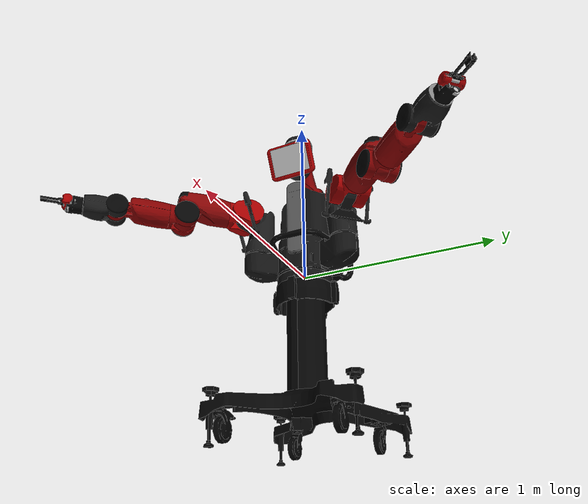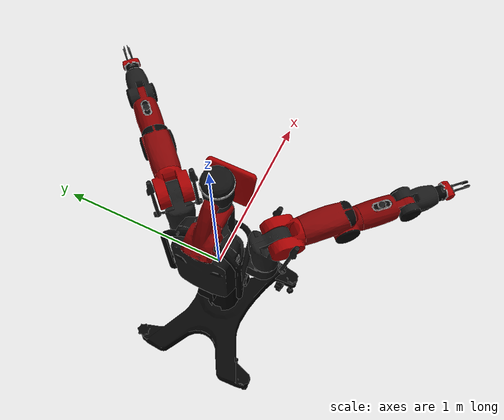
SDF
<sdf version='1.6'>
  <model name='baxter'>
    <link name='base'>
      <pose frame=''>0 0 0 0 -0 0</pose>
      <inertial>
        <pose frame=''>0 -0 3e-06 0 -0 0</pose>
        <mass>96.2011</mass>
        <inertia>
          <ixx>6.91297</ixx>
          <ixy>0.00068017</ixy>
          <ixz>0.64779</ixz>
          <iyy>7.74978</iyy>
          <iyz>0.00434511</iyz>
          <izz>5.76418</izz>
        </inertia>
      </inertial>
      <collision name='base_fixed_joint_lump__collision_head_link_1_collision'>
        <pose frame=''>0.04 -0.04 0.75 0 -0 0</pose>
        <geometry>
          <sphere>
            <radius>0.22</radius>
          </sphere>
        </geometry>
      </collision>
      <collision name='base_fixed_joint_lump__collision_head_link_2_collision_1'>
        <pose frame=''>0.04 0.04 0.75 0 -0 0</pose>
        <geometry>
          <sphere>
            <radius>0.22</radius>
          </sphere>
        </geometry>
      </collision>
      <collision name='base_fixed_joint_lump__torso_collision_2'>
        <pose frame=''>0 0 0 0 -0 0</pose>
        <geometry>
          <mesh>
            <scale>1 1 1</scale>
            <uri>model://baxter_description/meshes/torso/base_link_collision.DAE</uri>
          </mesh>
        </geometry>
      </collision>
      <collision name='base_fixed_joint_lump__pedestal_collision_3'>
        <pose frame=''>0 0 0 0 -0 0</pose>
        <geometry>
          <mesh>
            <scale>1 1 1</scale>
            <uri>model://baxter_description/meshes/base/pedestal_link_collision.DAE</uri>
          </mesh>
        </geometry>
      </collision>
      <collision name='base_fixed_joint_lump__sonar_ring_collision_4'>
        <pose frame=''>0.0947 0 0.817 0 -0 0</pose>
        <geometry>
          <sphere>
            <radius>0.001</radius>
          </sphere>
        </geometry>
      </collision>
      <visual name='base_fixed_joint_lump__collision_head_link_1_visual'>
        <pose frame=''>0.11 0 0.75 0 -0 0</pose>
        <geometry>
          <sphere>
            <radius>0.001</radius>
          </sphere>
        </geometry>
      </visual>
      <visual name='base_fixed_joint_lump__collision_head_link_2_visual_1'>
        <pose frame=''>0.11 0 0.75 0 -0 0</pose>
        <geometry>
          <sphere>
            <radius>0.001</radius>
          </sphere>
        </geometry>
      </visual>
      <visual name='base_fixed_joint_lump__torso_visual_2'>
        <pose frame=''>0 0 0 0 -0 0</pose>
        <geometry>
          <mesh>
            <scale>1 1 1</scale>
            <uri>model://baxter_description/meshes/torso/base_link.DAE</uri>
          </mesh>
        </geometry>
      </visual>
      <visual name='base_fixed_joint_lump__pedestal_visual_3'>
        <pose frame=''>0 0 0 0 -0 0</pose>
        <geometry>
          <mesh>
            <scale>1 1 1</scale>
            <uri>model://baxter_description/meshes/base/PEDESTAL.DAE</uri>
          </mesh>
        </geometry>
      </visual>
      <visual name='base_fixed_joint_lump__sonar_ring_visual_4'>
        <pose frame=''>0.06 0 0.82653 0 -0 0</pose>
        <geometry>
          <cylinder>
            <length>0.01</length>
            <radius>0.085</radius>
          </cylinder>
        </geometry>
      </visual>
    </link>
    <link name='head'>
      <pose frame=''>0.06 0 0.686 0 -0 0</pose>
      <inertial>
        <pose frame=''>0.054677 0 5e-06 0 -0 0</pose>
        <mass>0.988238</mass>
        <inertia>
          <ixx>0.00620194</ixx>
          <ixy>0.000202093</ixy>
          <ixz>0.000495898</ixz>
          <iyy>0.010977</iyy>
          <iyz>-0.00109806</iyz>
          <izz>0.00983914</izz>
        </inertia>
      </inertial>
      <collision name='head_collision'>
        <pose frame=''>0 0 0 0 -0 0</pose>
        <geometry>
          <sphere>
            <radius>0.001</radius>
          </sphere>
        </geometry>
      </collision>
      <collision name='head_fixed_joint_lump__screen_collision_1'>
        <pose frame=''>0.1227 0 0 1.75057 0 1.5708</pose>
        <geometry>
          <sphere>
            <radius>0.001</radius>
          </sphere>
        </geometry>
      </collision>
      <visual name='head_visual'>
        <pose frame=''>0 0 0.00953 0 -0 0</pose>
        <geometry>
          <mesh>
            <scale>1 1 1</scale>
            <uri>model://baxter_description/meshes/head/H0.DAE</uri>
          </mesh>
        </geometry>
      </visual>
      <visual name='head_fixed_joint_lump__screen_visual_1'>
        <pose frame=''>0.086855 0 -0.003172 1.5708 0.179774 0</pose>
        <geometry>
          <mesh>
            <scale>1 1 1</scale>
            <uri>model://baxter_description/meshes/head/H1.DAE</uri>
          </mesh>
        </geometry>
      </visual>
      <visual name='head_fixed_joint_lump__display_visual_2'>
        <pose frame=''>0.119839 0 -0.015742 2.01237 0 1.5708</pose>
        <geometry>
          <box>
            <size>0.218 0.16 0.001</size>
          </box>
        </geometry>
      </visual>
    </link>
    <joint name='head_pan' type='revolute'>
      <child>head</child>
      <parent>base</parent>
      <axis>
        <xyz>0 0 1</xyz>
        <limit>
          <lower>-1.3963</lower>
          <upper>1.3963</upper>
          <effort>50000</effort>
          <velocity>10000</velocity>
        </limit>
        <dynamics>
          <damping>0.7</damping>
          <friction>0</friction>
          <spring_reference>0</spring_reference>
          <spring_stiffness>0</spring_stiffness>
        </dynamics>
        <use_parent_model_frame>1</use_parent_model_frame>
      </axis>
    </joint>
    <link name='left_upper_shoulder'>
      <pose frame=''>0.064027 0.259027 0.129626 0 -0 0.7854</pose>
      <inertial>
        <pose frame=''>0.01783 0.00086 0.19127 0 -0 0</pose>
        <mass>5.70044</mass>
        <inertia>
          <ixx>0.047091</ixx>
          <ixy>0.000127876</ixy>
          <ixz>0.0061487</ixz>
          <iyy>0.0376698</iyy>
          <iyz>0.000780869</iyz>
          <izz>0.0359599</izz>
        </inertia>
      </inertial>
      <collision name='left_upper_shoulder_collision'>
        <pose frame=''>0 0 0.1361 0 -0 0</pose>
        <geometry>
          <cylinder>
            <length>0.2722</length>
            <radius>0.06</radius>
          </cylinder>
        </geometry>
      </collision>
      <visual name='left_upper_shoulder_visual'>
        <pose frame=''>0 0 0 0 -0 0</pose>
        <geometry>
          <mesh>
            <scale>1 1 1</scale>
            <uri>model://baxter_description/meshes/upper_shoulder/S0.DAE</uri>
          </mesh>
        </geometry>
      </visual>
    </link>
    <joint name='left_s0' type='revolute'>
      <child>left_upper_shoulder</child>
      <parent>base</parent>
      <axis>
        <xyz>0 0 1</xyz>
        <limit>
          <lower>-1.70168</lower>
          <upper>1.70168</upper>
          <effort>50</effort>
          <velocity>1.5</velocity>
        </limit>
        <dynamics>
          <damping>0.7</damping>
          <friction>0</friction>
          <spring_reference>0</spring_reference>
          <spring_stiffness>0</spring_stiffness>
        </dynamics>
        <use_parent_model_frame>1</use_parent_model_frame>
      </axis>
    </joint>
    <link name='left_lower_shoulder'>
      <pose frame=''>0.112818 0.307818 0.399976 -1.5708 -0 0.7854</pose>
      <inertial>
        <pose frame=''>0.068451 0.00269 -0.00529 0 -0 0</pose>
        <mass>3.22708</mass>
        <inertia>
          <ixx>0.0117521</ixx>
          <ixy>-0.000300954</ixy>
          <ixz>0.00207674</ixz>
          <iyy>0.0278861</iyy>
          <iyz>-0.000188219</iyz>
          <izz>0.0207877</izz>
        </inertia>
      </inertial>
      <collision name='left_lower_shoulder_collision'>
        <pose frame=''>0 0 0 0 -0 0</pose>
        <geometry>
          <cylinder>
            <length>0.12</length>
            <radius>0.06</radius>
          </cylinder>
        </geometry>
      </collision>
      <collision name='left_lower_shoulder_fixed_joint_lump__left_upper_elbow_visual_collision_1'>
        <pose frame=''>0.2435 -0 0 1.5708 -0 1.5708</pose>
        <geometry>
          <cylinder>
            <length>0.273</length>
            <radius>0.06</radius>
          </cylinder>
        </geometry>
      </collision>
      <visual name='left_lower_shoulder_visual'>
        <pose frame=''>0 0 0 0 -0 0</pose>
        <geometry>
          <mesh>
            <scale>1 1 1</scale>
            <uri>model://baxter_description/meshes/lower_shoulder/S1.DAE</uri>
          </mesh>
        </geometry>
      </visual>
    </link>
    <joint name='left_s1' type='revolute'>
      <child>left_lower_shoulder</child>
      <parent>left_upper_shoulder</parent>
      <axis>
        <xyz>-0.707108 0.707105 0</xyz>
        <limit>
          <lower>-2.147</lower>
          <upper>1.047</upper>
          <effort>50</effort>
          <velocity>1.5</velocity>
        </limit>
        <dynamics>
          <damping>0.7</damping>
          <friction>0</friction>
          <spring_reference>0</spring_reference>
          <spring_stiffness>0</spring_stiffness>
        </dynamics>
        <use_parent_model_frame>1</use_parent_model_frame>
      </axis>
    </joint>
    <link name='left_upper_elbow'>
      <pose frame=''>0.184942 0.379943 0.399976 -2.35616 1.57079 -1.57076</pose>
      <inertial>
        <pose frame=''>-0.00276 0.00132 0.18086 0 -0 0</pose>
        <mass>4.31272</mass>
        <inertia>
          <ixx>0.0266173</ixx>
          <ixy>0.000292706</ixy>
          <ixz>0.0039219</ixz>
          <iyy>0.0284436</iyy>
          <iyz>0.00108389</iyz>
          <izz>0.0124801</izz>
        </inertia>
      </inertial>
      <collision name='left_upper_elbow_collision'>
        <pose frame=''>0 0 -0.0535 0 -0 0</pose>
        <geometry>
          <cylinder>
            <length>0.107</length>
            <radius>0.06</radius>
          </cylinder>
        </geometry>
      </collision>
      <visual name='left_upper_elbow_visual'>
        <pose frame=''>0 0 0 0 -0 0</pose>
        <geometry>
          <mesh>
            <scale>1 1 1</scale>
            <uri>model://baxter_description/meshes/upper_elbow/E0.DAE</uri>
          </mesh>
        </geometry>
      </visual>
    </link>
    <joint name='left_e0' type='revolute'>
      <child>left_upper_elbow</child>
      <parent>left_lower_shoulder</parent>
      <axis>
        <xyz>0.707105 0.707108 0</xyz>
        <limit>
          <lower>-3.05418</lower>
          <upper>3.05418</upper>
          <effort>50</effort>
          <velocity>1.5</velocity>
        </limit>
        <dynamics>
          <damping>0.7</damping>
          <friction>0</friction>
          <spring_reference>0</spring_reference>
          <spring_stiffness>0</spring_stiffness>
        </dynamics>
        <use_parent_model_frame>1</use_parent_model_frame>
      </axis>
    </joint>
    <link name='left_lower_elbow'>
      <pose frame=''>0.370501 0.565502 0.330976 -1.5708 -0 0.7854</pose>
      <inertial>
        <pose frame=''>0.026113 0.00159 -0.01117 0 -0 0</pose>
        <mass>2.07216</mass>
        <inertia>
          <ixx>0.00711585</ixx>
          <ixy>0.000360372</ixy>
          <ixz>0.00074588</ixz>
          <iyy>0.0131827</iyy>
          <iyz>-0.000196632</iyz>
          <izz>0.00926891</izz>
        </inertia>
      </inertial>
      <collision name='left_lower_elbow_collision'>
        <pose frame=''>0 0 0 0 -0 0</pose>
        <geometry>
          <cylinder>
            <length>0.1</length>
            <radius>0.06</radius>
          </cylinder>
        </geometry>
      </collision>
      <collision name='left_lower_elbow_fixed_joint_lump__left_upper_forearm_visual_collision_1'>
        <pose frame=''>0.224 -0 0 1.5708 -0 1.5708</pose>
        <geometry>
          <cylinder>
            <length>0.272</length>
            <radius>0.06</radius>
          </cylinder>
        </geometry>
      </collision>
      <visual name='left_lower_elbow_visual'>
        <pose frame=''>0 0 0 0 -0 0</pose>
        <geometry>
          <mesh>
            <scale>1 1 1</scale>
            <uri>model://baxter_description/meshes/lower_elbow/E1.DAE</uri>
          </mesh>
        </geometry>
      </visual>
    </link>
    <joint name='left_e1' type='revolute'>
      <child>left_lower_elbow</child>
      <parent>left_upper_elbow</parent>
      <axis>
        <xyz>-0.707108 0.707105 0</xyz>
        <limit>
          <lower>-0.05</lower>
          <upper>2.618</upper>
          <effort>50</effort>
          <velocity>1.5</velocity>
        </limit>
        <dynamics>
          <damping>0.7</damping>
          <friction>0</friction>
          <spring_reference>0</spring_reference>
          <spring_stiffness>0</spring_stiffness>
        </dynamics>
        <use_parent_model_frame>1</use_parent_model_frame>
      </axis>
    </joint>
    <link name='left_upper_forearm'>
      <pose frame=''>0.44375 0.638751 0.330976 -2.03443 1.57079 -1.24903</pose>
      <inertial>
        <pose frame=''>-0.001682 0.0046 0.139519 0 -0 0</pose>
        <mass>2.24675</mass>
        <inertia>
          <ixx>0.0166775</ixx>
          <ixy>0.000184012</ixy>
          <ixz>0.000186469</ixz>
          <iyy>0.0167549</iyy>
          <iyz>-0.000647332</iyz>
          <izz>0.00374662</izz>
        </inertia>
      </inertial>
      <collision name='left_upper_forearm_collision'>
        <pose frame=''>0 0 -0.044 0 -0 0</pose>
        <geometry>
          <cylinder>
            <length>0.088</length>
            <radius>0.06</radius>
          </cylinder>
        </geometry>
      </collision>
      <visual name='left_upper_forearm_visual'>
        <pose frame=''>0 0 0 0 -0 0</pose>
        <geometry>
          <mesh>
            <scale>1 1 1</scale>
            <uri>model://baxter_description/meshes/upper_forearm/W0.DAE</uri>
          </mesh>
        </geometry>
      </visual>
    </link>
    <joint name='left_w0' type='revolute'>
      <child>left_upper_forearm</child>
      <parent>left_lower_elbow</parent>
      <axis>
        <xyz>0.707105 0.707108 0</xyz>
        <limit>
          <lower>-3.059</lower>
          <upper>3.059</upper>
          <effort>15</effort>
          <velocity>4</velocity>
        </limit>
        <dynamics>
          <damping>0.7</damping>
          <friction>0</friction>
          <spring_reference>0</spring_reference>
          <spring_stiffness>0</spring_stiffness>
        </dynamics>
        <use_parent_model_frame>1</use_parent_model_frame>
      </axis>
    </joint>
    <link name='left_lower_forearm'>
      <pose frame=''>0.635163 0.830166 0.320976 -1.5708 -0 0.7854</pose>
      <inertial>
        <pose frame=''>0.06041 0.00697 0.006 0 -0 0</pose>
        <mass>1.60979</mass>
        <inertia>
          <ixx>0.00387607</ixx>
          <ixy>-0.000443848</ixy>
          <ixz>-0.00021115</ixz>
          <iyy>0.00700538</iyy>
          <iyz>0.000153481</iyz>
          <izz>0.00552755</izz>
        </inertia>
      </inertial>
      <collision name='left_lower_forearm_collision'>
        <pose frame=''>0 0 0 0 -0 0</pose>
        <geometry>
          <cylinder>
            <length>0.1</length>
            <radius>0.06</radius>
          </cylinder>
        </geometry>
      </collision>
      <visual name='left_lower_forearm_visual'>
        <pose frame=''>0 0 0 0 -0 0</pose>
        <geometry>
          <mesh>
            <scale>1 1 1</scale>
            <uri>model://baxter_description/meshes/lower_forearm/W1.DAE</uri>
          </mesh>
        </geometry>
      </visual>
    </link>
    <joint name='left_w1' type='revolute'>
      <child>left_lower_forearm</child>
      <parent>left_upper_forearm</parent>
      <axis>
        <xyz>-0.707108 0.707105 0</xyz>
        <limit>
          <lower>-1.5708</lower>
          <upper>2.094</upper>
          <effort>15</effort>
          <velocity>4</velocity>
        </limit>
        <dynamics>
          <damping>0.7</damping>
          <friction>0</friction>
          <spring_reference>0</spring_reference>
          <spring_stiffness>0</spring_stiffness>
        </dynamics>
        <use_parent_model_frame>1</use_parent_model_frame>
      </axis>
    </joint>
    <link name='left_wrist'>
      <pose frame=''>0.71717 0.912173 0.320976 -1.89253 1.57079 -1.10713</pose>
      <inertial>
        <pose frame=''>0.003318 0.000616 0.079435 0 -0 0</pose>
        <mass>0.84268</mass>
        <inertia>
          <ixx>0.00285059</ixx>
          <ixy>7.17373e-06</ixy>
          <ixz>2.52032e-05</ixz>
          <iyy>0.00291735</iyy>
          <iyz>2.17353e-05</iyz>
          <izz>0.000560608</izz>
        </inertia>
      </inertial>
      <collision name='left_wrist_collision'>
        <pose frame=''>0 0 0 0 -0 0</pose>
        <geometry>
          <cylinder>
            <length>0.165</length>
            <radius>0.06</radius>
          </cylinder>
        </geometry>
      </collision>
      <collision name='left_wrist_fixed_joint_lump__left_hand_collision_1'>
        <pose frame=''>0 0 0.09035 0 -0 0</pose>
        <geometry>
          <cylinder>
            <length>0.0464</length>
            <radius>0.04</radius>
          </cylinder>
        </geometry>
      </collision>
      <collision name='left_wrist_fixed_joint_lump__left_gripper_base_collision_2'>
        <pose frame=''>0 0 0.13855 1.5708 -0 3.14159</pose>
        <geometry>
          <cylinder>
            <length>0.1</length>
            <radius>0.029</radius>
          </cylinder>
        </geometry>
      </collision>
      <visual name='left_wrist_visual'>
        <pose frame=''>0 0 0 0 -0 0</pose>
        <geometry>
          <mesh>
            <scale>1 1 1</scale>
            <uri>model://baxter_description/meshes/wrist/W2.DAE</uri>
          </mesh>
        </geometry>
      </visual>
      <visual name='left_wrist_fixed_joint_lump__left_gripper_base_visual_1'>
        <pose frame=''>0 0 0.13855 1.5708 -0 3.14159</pose>
        <geometry>
          <mesh>
            <scale>1 1 1</scale>
            <uri>model://rethink_ee_description/meshes/electric_gripper/electric_gripper_base.DAE</uri>
          </mesh>
        </geometry>
      </visual>
      <visual name='left_wrist_fixed_joint_lump__left_hand_accelerometer_visual_2'>
        <pose frame=''>0.00198 0.000133 0.09895 0 -0 0</pose>
        <geometry>
          <box>
            <size>0.01 0.01 0.01</size>
          </box>
        </geometry>
      </visual>
      <visual name='left_wrist_fixed_joint_lump__left_hand_camera_visual_3'>
        <pose frame=''>0.03825 0.012 0.128905 0 0 -1.5708</pose>
        <geometry>
          <cylinder>
            <length>0.01</length>
            <radius>0.02</radius>
          </cylinder>
        </geometry>
      </visual>
      <visual name='left_wrist_fixed_joint_lump__left_hand_range_visual_4'>
        <pose frame=''>0.032 -0.020245 0.14235 3.14159 -1.57079 1.57079</pose>
        <geometry>
          <box>
            <size>0.005 0.02 0.005</size>
          </box>
        </geometry>
      </visual>
    </link>
    <joint name='left_w2' type='revolute'>
      <child>left_wrist</child>
      <parent>left_lower_forearm</parent>
      <axis>
        <xyz>0.707105 0.707108 0</xyz>
        <limit>
          <lower>-3.059</lower>
          <upper>3.059</upper>
          <effort>15</effort>
          <velocity>4</velocity>
        </limit>
        <dynamics>
          <damping>0.7</damping>
          <friction>0</friction>
          <spring_reference>0</spring_reference>
          <spring_stiffness>0</spring_stiffness>
        </dynamics>
        <use_parent_model_frame>1</use_parent_model_frame>
      </axis>
    </joint>
    <link name='l_gripper_l_finger'>
      <pose frame=''>0.830342 1.02322 0.320976 -1.89253 1.57079 -1.10713</pose>
      <inertial>
        <pose frame=''>0 0.00575 0.037567 0 -0 3.14159</pose>
        <mass>0.03</mass>
        <inertia>
          <ixx>0.0200867</ixx>
          <ixy>4.0989e-19</ixy>
          <ixz>-2.67795e-18</ixz>
          <iyy>0.0200847</iyy>
          <iyz>1.29605e-05</iyz>
          <izz>0.020002</izz>
        </inertia>
      </inertial>
      <collision name='l_gripper_l_finger_collision_collision'>
        <pose frame=''>0 0.01725 0.0615 0 -0 3.14159</pose>
        <geometry>
          <box>
            <size>0.01 0.0135 0.1127</size>
          </box>
        </geometry>
        <surface>
          <contact>
            <ode>
              <kp>100000</kp>
              <kd>1</kd>
            </ode>
          </contact>
          <friction>
            <ode>
              <mu>1000</mu>
              <mu2>1000</mu2>
              <fdir1>0 0 1</fdir1>
            </ode>
          </friction>
        </surface>
      </collision>
      <collision name='l_gripper_l_finger_collision_1'>
        <pose frame=''>-0.005 -0.003 0.0083 0 -0 3.14159</pose>
        <geometry>
          <box>
            <size>0.01 0.05 0.017</size>
          </box>
        </geometry>
        <surface>
          <contact>
            <ode>
              <kp>100000</kp>
              <kd>1</kd>
            </ode>
          </contact>
          <friction>
            <ode>
              <mu>1000</mu>
              <mu2>1000</mu2>
              <fdir1>0 0 1</fdir1>
            </ode>
          </friction>
        </surface>
      </collision>
      <collision name='l_gripper_l_finger_collision_collision_2'>
        <pose frame=''>0 0.01275 0.0977 0 -0 -3.14159</pose>
        <geometry>
          <box>
            <size>0.042 0.0065 0.037</size>
          </box>
        </geometry>
        <surface>
          <contact>
            <ode>
              <kp>100000</kp>
              <kd>1</kd>
            </ode>
          </contact>
          <friction>
            <ode>
              <mu>1000</mu>
              <mu2>1000</mu2>
              <fdir1>0 0 1</fdir1>
            </ode>
          </friction>
        </surface>
      </collision>
      <visual name='l_gripper_l_finger_visual'>
        <pose frame=''>0 0 0 0 -0 3.14159</pose>
        <geometry>
          <mesh>
            <scale>1 1 1</scale>
            <uri>model://rethink_ee_description/meshes/electric_gripper/fingers/extended_narrow.DAE</uri>
          </mesh>
        </geometry>
        <material>
          <script>
            <uri>__default__</uri>
            <name>__default__</name>
          </script>
        </material>
      </visual>
      <visual name='l_gripper_l_finger_tip_visual_1'>
        <pose frame=''>0 0.01725 0.1127 0 -0 -3.14159</pose>
        <geometry>
          <mesh>
            <scale>1 1 1</scale>
            <uri>model://rethink_ee_description/meshes/electric_gripper/fingers/paddle_tip.DAE</uri>
          </mesh>
        </geometry>
        <material>
          <script>
            <uri>__default__</uri>
            <name>__default__</name>
          </script>
        </material>
      </visual>
      <velocity_decay/>
      <gravity>1</gravity>
      <velocity_decay/>
      <self_collide>0</self_collide>
      <sensor name='l_contact' type='contact'>
        <plugin name='l_plugin' filename='libcontact.so'/>
        <contact>
          <collision>l_gripper_l_finger_collision_collision</collision>
          <topic>__default_topic__</topic>
        </contact>
        <update_rate>5</update_rate>
      </sensor>
    </link>
    <joint name='l_gripper_l_finger_joint' type='prismatic'>
      <child>l_gripper_l_finger</child>
      <parent>left_wrist</parent>
      <axis>
        <xyz>-0.707108 0.707105 0</xyz>
        <limit>
          <lower>0</lower>
          <upper>0.020833</upper>
          <effort>20</effort>
          <velocity>5</velocity>
        </limit>
        <dynamics>
          <damping>0.7</damping>
          <friction>0</friction>
          <spring_reference>0</spring_reference>
          <spring_stiffness>0</spring_stiffness>
        </dynamics>
        <use_parent_model_frame>1</use_parent_model_frame>
      </axis>
      <physics>
        <ode>
          <implicit_spring_damper>1</implicit_spring_damper>
          <cfm_damping>1</cfm_damping>
          <limit>
            <cfm>0</cfm>
            <erp>0.2</erp>
          </limit>
        </ode>
      </physics>
    </joint>
    <link name='l_gripper_r_finger'>
      <pose frame=''>0.828221 1.02535 0.320976 -1.89253 1.57079 -1.10713</pose>
      <inertial>
        <pose frame=''>0 -0.00575 0.037567 0 -0 0</pose>
        <mass>0.03</mass>
        <inertia>
          <ixx>0.0200867</ixx>
          <ixy>0</ixy>
          <ixz>0</ixz>
          <iyy>0.0200847</iyy>
          <iyz>1.29605e-05</iyz>
          <izz>0.020002</izz>
        </inertia>
      </inertial>
      <collision name='l_gripper_r_finger_collision_collision'>
        <pose frame=''>0 -0.01725 0.0615 0 -0 0</pose>
        <geometry>
          <box>
            <size>0.01 0.0135 0.1127</size>
          </box>
        </geometry>
        <surface>
          <contact>
            <ode>
              <kp>100000</kp>
              <kd>1</kd>
            </ode>
          </contact>
          <friction>
            <ode>
              <mu>1000</mu>
              <mu2>1000</mu2>
              <fdir1>0 0 1</fdir1>
            </ode>
          </friction>
        </surface>
      </collision>
      <collision name='l_gripper_r_finger_collision_1'>
        <pose frame=''>0.005 0.003 0.0083 0 -0 0</pose>
        <geometry>
          <box>
            <size>0.01 0.05 0.017</size>
          </box>
        </geometry>
        <surface>
          <contact>
            <ode>
              <kp>100000</kp>
              <kd>1</kd>
            </ode>
          </contact>
          <friction>
            <ode>
              <mu>1000</mu>
              <mu2>1000</mu2>
              <fdir1>0 0 1</fdir1>
            </ode>
          </friction>
        </surface>
      </collision>
      <collision name='l_gripper_r_finger_collision_collision_2'>
        <pose frame=''>0 -0.01275 0.0977 0 -0 0</pose>
        <geometry>
          <box>
            <size>0.042 0.0065 0.037</size>
          </box>
        </geometry>
        <surface>
          <contact>
            <ode>
              <kp>100000</kp>
              <kd>1</kd>
            </ode>
          </contact>
          <friction>
            <ode>
              <mu>1000</mu>
              <mu2>1000</mu2>
              <fdir1>0 0 1</fdir1>
            </ode>
          </friction>
        </surface>
      </collision>
      <visual name='l_gripper_r_finger_visual'>
        <pose frame=''>0 0 0 0 -0 0</pose>
        <geometry>
          <mesh>
            <scale>1 1 1</scale>
            <uri>model://rethink_ee_description/meshes/electric_gripper/fingers/extended_narrow.DAE</uri>
          </mesh>
        </geometry>
        <material>
          <script>
            <uri>__default__</uri>
            <name>__default__</name>
          </script>
        </material>
      </visual>
      <visual name='l_gripper_r_finger_tip_visual_1'>
        <pose frame=''>0 -0.01725 0.1127 0 -0 0</pose>
        <geometry>
          <mesh>
            <scale>1 1 1</scale>
            <uri>model://rethink_ee_description/meshes/electric_gripper/fingers/paddle_tip.DAE</uri>
          </mesh>
        </geometry>
        <material>
          <script>
            <uri>__default__</uri>
            <name>__default__</name>
          </script>
        </material>
      </visual>
      <velocity_decay/>
      <gravity>1</gravity>
      <velocity_decay/>
      <self_collide>0</self_collide>
      <sensor name='l_contact' type='contact'>
        <plugin name='l_plugin' filename='libcontact.so'/>
        <contact>
          <collision>l_gripper_r_finger_collision_collision</collision>
          <topic>__default_topic__</topic>
        </contact>
        <update_rate>5</update_rate>
      </sensor>
    </link>
    <joint name='l_gripper_r_finger_joint' type='prismatic'>
      <child>l_gripper_r_finger</child>
      <parent>left_wrist</parent>
      <axis>
        <xyz>-0.707108 0.707105 0</xyz>
        <limit>
          <lower>-0.020833</lower>
          <upper>0</upper>
          <effort>20</effort>
          <velocity>5</velocity>
        </limit>
        <dynamics>
          <damping>0.7</damping>
          <friction>0</friction>
          <spring_reference>0</spring_reference>
          <spring_stiffness>0</spring_stiffness>
        </dynamics>
        <use_parent_model_frame>1</use_parent_model_frame>
      </axis>
      <physics>
        <ode>
          <implicit_spring_damper>1</implicit_spring_damper>
          <cfm_damping>1</cfm_damping>
          <limit>
            <cfm>0</cfm>
            <erp>0.2</erp>
          </limit>
        </ode>
      </physics>
    </joint>
    <link name='right_upper_shoulder'>
      <pose frame=''>0.064027 -0.259027 0.129626 0 0 -0.7854</pose>
      <inertial>
        <pose frame=''>0.01783 0.00086 0.19127 0 -0 0</pose>
        <mass>5.70044</mass>
        <inertia>
          <ixx>0.047091</ixx>
          <ixy>0.000127876</ixy>
          <ixz>0.0061487</ixz>
          <iyy>0.0376698</iyy>
          <iyz>0.000780869</iyz>
          <izz>0.0359599</izz>
        </inertia>
      </inertial>
      <collision name='right_upper_shoulder_collision'>
        <pose frame=''>0 0 0.1361 0 -0 0</pose>
        <geometry>
          <cylinder>
            <length>0.2722</length>
            <radius>0.06</radius>
          </cylinder>
        </geometry>
      </collision>
      <visual name='right_upper_shoulder_visual'>
        <pose frame=''>0 0 0 0 -0 0</pose>
        <geometry>
          <mesh>
            <scale>1 1 1</scale>
            <uri>model://baxter_description/meshes/upper_shoulder/S0.DAE</uri>
          </mesh>
        </geometry>
      </visual>
    </link>
    <joint name='right_s0' type='revolute'>
      <child>right_upper_shoulder</child>
      <parent>base</parent>
      <axis>
        <xyz>0 0 1</xyz>
        <limit>
          <lower>-1.70168</lower>
          <upper>1.70168</upper>
          <effort>50</effort>
          <velocity>1.5</velocity>
        </limit>
        <dynamics>
          <damping>0.7</damping>
          <friction>0</friction>
          <spring_reference>0</spring_reference>
          <spring_stiffness>0</spring_stiffness>
        </dynamics>
        <use_parent_model_frame>1</use_parent_model_frame>
      </axis>
    </joint>
    <link name='right_lower_shoulder'>
      <pose frame=''>0.112818 -0.307818 0.399976 -1.5708 -0 -0.7854</pose>
      <inertial>
        <pose frame=''>0.068451 0.00269 -0.00529 0 -0 0</pose>
        <mass>3.22708</mass>
        <inertia>
          <ixx>0.0117521</ixx>
          <ixy>-0.000300954</ixy>
          <ixz>0.00207674</ixz>
          <iyy>0.0278861</iyy>
          <iyz>-0.000188219</iyz>
          <izz>0.0207877</izz>
        </inertia>
      </inertial>
      <collision name='right_lower_shoulder_collision'>
        <pose frame=''>0 0 0 0 -0 0</pose>
        <geometry>
          <cylinder>
            <length>0.12</length>
            <radius>0.06</radius>
          </cylinder>
        </geometry>
      </collision>
      <collision name='right_lower_shoulder_fixed_joint_lump__right_upper_elbow_visual_collision_1'>
        <pose frame=''>0.2435 -0 0 1.5708 -0 1.5708</pose>
        <geometry>
          <cylinder>
            <length>0.273</length>
            <radius>0.06</radius>
          </cylinder>
        </geometry>
      </collision>
      <visual name='right_lower_shoulder_visual'>
        <pose frame=''>0 0 0 0 -0 0</pose>
        <geometry>
          <mesh>
            <scale>1 1 1</scale>
            <uri>model://baxter_description/meshes/lower_shoulder/S1.DAE</uri>
          </mesh>
        </geometry>
      </visual>
    </link>
    <joint name='right_s1' type='revolute'>
      <child>right_lower_shoulder</child>
      <parent>right_upper_shoulder</parent>
      <axis>
        <xyz>0.707108 0.707105 0</xyz>
        <limit>
          <lower>-2.147</lower>
          <upper>1.047</upper>
          <effort>50</effort>
          <velocity>1.5</velocity>
        </limit>
        <dynamics>
          <damping>0.7</damping>
          <friction>0</friction>
          <spring_reference>0</spring_reference>
          <spring_stiffness>0</spring_stiffness>
        </dynamics>
        <use_parent_model_frame>1</use_parent_model_frame>
      </axis>
    </joint>
    <link name='right_upper_elbow'>
      <pose frame=''>0.184942 -0.379943 0.399976 -2.35618 1.57079 -3.14159</pose>
      <inertial>
        <pose frame=''>-0.00276 0.00132 0.18086 0 -0 0</pose>
        <mass>4.31272</mass>
        <inertia>
          <ixx>0.0266173</ixx>
          <ixy>0.000292706</ixy>
          <ixz>0.0039219</ixz>
          <iyy>0.0284436</iyy>
          <iyz>0.00108389</iyz>
          <izz>0.0124801</izz>
        </inertia>
      </inertial>
      <collision name='right_upper_elbow_collision'>
        <pose frame=''>0 0 -0.0535 0 -0 0</pose>
        <geometry>
          <cylinder>
            <length>0.107</length>
            <radius>0.06</radius>
          </cylinder>
        </geometry>
      </collision>
      <visual name='right_upper_elbow_visual'>
        <pose frame=''>0 0 0 0 -0 0</pose>
        <geometry>
          <mesh>
            <scale>1 1 1</scale>
            <uri>model://baxter_description/meshes/upper_elbow/E0.DAE</uri>
          </mesh>
        </geometry>
      </visual>
    </link>
    <joint name='right_e0' type='revolute'>
      <child>right_upper_elbow</child>
      <parent>right_lower_shoulder</parent>
      <axis>
        <xyz>0.707105 -0.707108 0</xyz>
        <limit>
          <lower>-3.05418</lower>
          <upper>3.05418</upper>
          <effort>50</effort>
          <velocity>1.5</velocity>
        </limit>
        <dynamics>
          <damping>0.7</damping>
          <friction>0</friction>
          <spring_reference>0</spring_reference>
          <spring_stiffness>0</spring_stiffness>
        </dynamics>
        <use_parent_model_frame>1</use_parent_model_frame>
      </axis>
    </joint>
    <link name='right_lower_elbow'>
      <pose frame=''>0.370501 -0.565502 0.330976 -1.5708 0 -0.7854</pose>
      <inertial>
        <pose frame=''>0.026113 0.00159 -0.01117 0 -0 0</pose>
        <mass>2.07216</mass>
        <inertia>
          <ixx>0.00711585</ixx>
          <ixy>0.000360372</ixy>
          <ixz>0.00074588</ixz>
          <iyy>0.0131827</iyy>
          <iyz>-0.000196632</iyz>
          <izz>0.00926891</izz>
        </inertia>
      </inertial>
      <collision name='right_lower_elbow_collision'>
        <pose frame=''>0 0 0 0 -0 0</pose>
        <geometry>
          <cylinder>
            <length>0.1</length>
            <radius>0.06</radius>
          </cylinder>
        </geometry>
      </collision>
      <collision name='right_lower_elbow_fixed_joint_lump__right_upper_forearm_visual_collision_1'>
        <pose frame=''>0.224 -0 0 1.5708 -0 1.5708</pose>
        <geometry>
          <cylinder>
            <length>0.272</length>
            <radius>0.06</radius>
          </cylinder>
        </geometry>
      </collision>
      <visual name='right_lower_elbow_visual'>
        <pose frame=''>0 0 0 0 -0 0</pose>
        <geometry>
          <mesh>
            <scale>1 1 1</scale>
            <uri>model://baxter_description/meshes/lower_elbow/E1.DAE</uri>
          </mesh>
        </geometry>
      </visual>
    </link>
    <joint name='right_e1' type='revolute'>
      <child>right_lower_elbow</child>
      <parent>right_upper_elbow</parent>
      <axis>
        <xyz>0.707108 0.707105 0</xyz>
        <limit>
          <lower>-0.05</lower>
          <upper>2.618</upper>
          <effort>50</effort>
          <velocity>1.5</velocity>
        </limit>
        <dynamics>
          <damping>0.7</damping>
          <friction>0</friction>
          <spring_reference>0</spring_reference>
          <spring_stiffness>0</spring_stiffness>
        </dynamics>
        <use_parent_model_frame>1</use_parent_model_frame>
      </axis>
    </joint>
    <link name='right_upper_forearm'>
      <pose frame=''>0.44375 -0.638751 0.330976 -2.03443 1.57079 -2.81983</pose>
      <inertial>
        <pose frame=''>-0.001682 0.0046 0.139519 0 -0 0</pose>
        <mass>2.24675</mass>
        <inertia>
          <ixx>0.0166775</ixx>
          <ixy>0.000184012</ixy>
          <ixz>0.000186469</ixz>
          <iyy>0.0167549</iyy>
          <iyz>-0.000647332</iyz>
          <izz>0.00374662</izz>
        </inertia>
      </inertial>
      <collision name='right_upper_forearm_collision'>
        <pose frame=''>0 0 -0.044 0 -0 0</pose>
        <geometry>
          <cylinder>
            <length>0.088</length>
            <radius>0.06</radius>
          </cylinder>
        </geometry>
      </collision>
      <visual name='right_upper_forearm_visual'>
        <pose frame=''>0 0 0 0 -0 0</pose>
        <geometry>
          <mesh>
            <scale>1 1 1</scale>
            <uri>model://baxter_description/meshes/upper_forearm/W0.DAE</uri>
          </mesh>
        </geometry>
      </visual>
    </link>
    <joint name='right_w0' type='revolute'>
      <child>right_upper_forearm</child>
      <parent>right_lower_elbow</parent>
      <axis>
        <xyz>0.707105 -0.707108 0</xyz>
        <limit>
          <lower>-3.059</lower>
          <upper>3.059</upper>
          <effort>15</effort>
          <velocity>4</velocity>
        </limit>
        <dynamics>
          <damping>0.7</damping>
          <friction>0</friction>
          <spring_reference>0</spring_reference>
          <spring_stiffness>0</spring_stiffness>
        </dynamics>
        <use_parent_model_frame>1</use_parent_model_frame>
      </axis>
    </joint>
    <link name='right_lower_forearm'>
      <pose frame=''>0.635163 -0.830166 0.320976 -1.5708 -0 -0.7854</pose>
      <inertial>
        <pose frame=''>0.06041 0.00697 0.006 0 -0 0</pose>
        <mass>1.60979</mass>
        <inertia>
          <ixx>0.00387607</ixx>
          <ixy>-0.000443848</ixy>
          <ixz>-0.00021115</ixz>
          <iyy>0.00700538</iyy>
          <iyz>0.000153481</iyz>
          <izz>0.00552755</izz>
        </inertia>
      </inertial>
      <collision name='right_lower_forearm_collision'>
        <pose frame=''>0 0 0 0 -0 0</pose>
        <geometry>
          <cylinder>
            <length>0.1</length>
            <radius>0.06</radius>
          </cylinder>
        </geometry>
      </collision>
      <visual name='right_lower_forearm_visual'>
        <pose frame=''>0 0 0 0 -0 0</pose>
        <geometry>
          <mesh>
            <scale>1 1 1</scale>
            <uri>model://baxter_description/meshes/lower_forearm/W1.DAE</uri>
          </mesh>
        </geometry>
      </visual>
    </link>
    <joint name='right_w1' type='revolute'>
      <child>right_lower_forearm</child>
      <parent>right_upper_forearm</parent>
      <axis>
        <xyz>0.707108 0.707105 0</xyz>
        <limit>
          <lower>-1.5708</lower>
          <upper>2.094</upper>
          <effort>15</effort>
          <velocity>4</velocity>
        </limit>
        <dynamics>
          <damping>0.7</damping>
          <friction>0</friction>
          <spring_reference>0</spring_reference>
          <spring_stiffness>0</spring_stiffness>
        </dynamics>
        <use_parent_model_frame>1</use_parent_model_frame>
      </axis>
    </joint>
    <link name='right_wrist'>
      <pose frame=''>0.71717 -0.912173 0.320976 -1.89254 1.57079 -2.67794</pose>
      <inertial>
        <pose frame=''>0.003318 0.000616 0.079435 0 -0 0</pose>
        <mass>0.84268</mass>
        <inertia>
          <ixx>0.00285059</ixx>
          <ixy>7.17373e-06</ixy>
          <ixz>2.52032e-05</ixz>
          <iyy>0.00291735</iyy>
          <iyz>2.17353e-05</iyz>
          <izz>0.000560608</izz>
        </inertia>
      </inertial>
      <collision name='right_wrist_collision'>
        <pose frame=''>0 0 0 0 -0 0</pose>
        <geometry>
          <cylinder>
            <length>0.165</length>
            <radius>0.06</radius>
          </cylinder>
        </geometry>
      </collision>
      <collision name='right_wrist_fixed_joint_lump__right_hand_collision_1'>
        <pose frame=''>0 0 0.09035 0 -0 0</pose>
        <geometry>
          <cylinder>
            <length>0.0464</length>
            <radius>0.04</radius>
          </cylinder>
        </geometry>
      </collision>
      <collision name='right_wrist_fixed_joint_lump__right_gripper_base_collision_2'>
        <pose frame=''>0 0 0.13855 1.5708 -0 3.14159</pose>
        <geometry>
          <cylinder>
            <length>0.1</length>
            <radius>0.029</radius>
          </cylinder>
        </geometry>
      </collision>
      <visual name='right_wrist_visual'>
        <pose frame=''>0 0 0 0 -0 0</pose>
        <geometry>
          <mesh>
            <scale>1 1 1</scale>
            <uri>model://baxter_description/meshes/wrist/W2.DAE</uri>
          </mesh>
        </geometry>
      </visual>
      <visual name='right_wrist_fixed_joint_lump__right_gripper_base_visual_1'>
        <pose frame=''>0 0 0.13855 1.5708 -0 3.14159</pose>
        <geometry>
          <mesh>
            <scale>1 1 1</scale>
            <uri>model://rethink_ee_description/meshes/electric_gripper/electric_gripper_base.DAE</uri>
          </mesh>
        </geometry>
      </visual>
      <visual name='right_wrist_fixed_joint_lump__right_hand_accelerometer_visual_2'>
        <pose frame=''>0.00198 0.000133 0.09895 0 -0 0</pose>
        <geometry>
          <box>
            <size>0.01 0.01 0.01</size>
          </box>
        </geometry>
      </visual>
      <visual name='right_wrist_fixed_joint_lump__right_hand_camera_visual_3'>
        <pose frame=''>0.03825 0.012 0.128905 0 0 -1.5708</pose>
        <geometry>
          <cylinder>
            <length>0.01</length>
            <radius>0.02</radius>
          </cylinder>
        </geometry>
      </visual>
      <visual name='right_wrist_fixed_joint_lump__right_hand_range_visual_4'>
        <pose frame=''>0.032 -0.020245 0.14235 3.14159 -1.57079 1.57079</pose>
        <geometry>
          <box>
            <size>0.005 0.02 0.005</size>
          </box>
        </geometry>
      </visual>
    </link>
    <joint name='right_w2' type='revolute'>
      <child>right_wrist</child>
      <parent>right_lower_forearm</parent>
      <axis>
        <xyz>0.707105 -0.707108 0</xyz>
        <limit>
          <lower>-3.059</lower>
          <upper>3.059</upper>
          <effort>15</effort>
          <velocity>4</velocity>
        </limit>
        <dynamics>
          <damping>0.7</damping>
          <friction>0</friction>
          <spring_reference>0</spring_reference>
          <spring_stiffness>0</spring_stiffness>
        </dynamics>
        <use_parent_model_frame>1</use_parent_model_frame>
      </axis>
    </joint>
    <link name='r_gripper_l_finger'>
      <pose frame=''>0.828221 -1.02535 0.320976 -1.89254 1.57079 -2.67794</pose>
      <inertial>
        <pose frame=''>0 0.00575 0.037567 0 -0 3.14159</pose>
        <mass>0.03</mass>
        <inertia>
          <ixx>0.0200867</ixx>
          <ixy>4.0989e-19</ixy>
          <ixz>-2.67795e-18</ixz>
          <iyy>0.0200847</iyy>
          <iyz>1.29605e-05</iyz>
          <izz>0.020002</izz>
        </inertia>
      </inertial>
      <collision name='r_gripper_l_finger_collision_collision'>
        <pose frame=''>0 0.01725 0.0615 0 -0 3.14159</pose>
        <geometry>
          <box>
            <size>0.01 0.0135 0.1127</size>
          </box>
        </geometry>
        <surface>
          <contact>
            <ode>
              <kp>100000</kp>
              <kd>1</kd>
            </ode>
          </contact>
          <friction>
            <ode>
              <mu>1000</mu>
              <mu2>1000</mu2>
              <fdir1>0 0 1</fdir1>
            </ode>
          </friction>
        </surface>
      </collision>
      <collision name='r_gripper_l_finger_collision_1'>
        <pose frame=''>-0.005 -0.003 0.0083 0 -0 3.14159</pose>
        <geometry>
          <box>
            <size>0.01 0.05 0.017</size>
          </box>
        </geometry>
        <surface>
          <contact>
            <ode>
              <kp>100000</kp>
              <kd>1</kd>
            </ode>
          </contact>
          <friction>
            <ode>
              <mu>1000</mu>
              <mu2>1000</mu2>
              <fdir1>0 0 1</fdir1>
            </ode>
          </friction>
        </surface>
      </collision>
      <collision name='r_gripper_l_finger_tip_collision_2'>
        <pose frame=''>0 0.01275 0.0977 0 -0 -3.14159</pose>
        <geometry>
          <cylinder>
            <length>0.037</length>
            <radius>0.008</radius>
          </cylinder>
        </geometry>
        <surface>
          <contact>
            <ode>
              <kp>100000</kp>
              <kd>1</kd>
            </ode>
          </contact>
          <friction>
            <ode>
              <mu>1000</mu>
              <mu2>1000</mu2>
              <fdir1>0 0 1</fdir1>
            </ode>
          </friction>
        </surface>
      </collision>
      <visual name='r_gripper_l_finger_visual'>
        <pose frame=''>0 0 0 0 -0 3.14159</pose>
        <geometry>
          <mesh>
            <scale>1 1 1</scale>
            <uri>model://rethink_ee_description/meshes/electric_gripper/fingers/extended_narrow.DAE</uri>
          </mesh>
        </geometry>
        <material>
          <script>
            <uri>__default__</uri>
            <name>__default__</name>
          </script>
        </material>
      </visual>
      <visual name='r_gripper_l_finger_tip_visual_1'>
        <pose frame=''>0 0.01725 0.1127 0 -0 -3.14159</pose>
        <geometry>
          <mesh>
            <scale>1 1 1</scale>
            <uri>model://rethink_ee_description/meshes/electric_gripper/fingers/half_round_tip.DAE</uri>
          </mesh>
        </geometry>
        <material>
          <script>
            <uri>__default__</uri>
            <name>__default__</name>
          </script>
        </material>
      </visual>
      <velocity_decay/>
      <gravity>1</gravity>
      <velocity_decay/>
      <self_collide>0</self_collide>
      <sensor name='r_contact' type='contact'>
        <plugin name='r_plugin' filename='libcontact.so'/>
        <contact>
          <collision>r_gripper_l_finger_collision_collision</collision>
          <topic>__default_topic__</topic>
        </contact>
        <update_rate>5</update_rate>
      </sensor>
    </link>
    <joint name='r_gripper_l_finger_joint' type='prismatic'>
      <child>r_gripper_l_finger</child>
      <parent>right_wrist</parent>
      <axis>
        <xyz>0.707108 0.707105 0</xyz>
        <limit>
          <lower>0</lower>
          <upper>0.020833</upper>
          <effort>20</effort>
          <velocity>5</velocity>
        </limit>
        <dynamics>
          <damping>0.7</damping>
          <friction>0</friction>
          <spring_reference>0</spring_reference>
          <spring_stiffness>0</spring_stiffness>
        </dynamics>
        <use_parent_model_frame>1</use_parent_model_frame>
      </axis>
      <physics>
        <ode>
          <implicit_spring_damper>1</implicit_spring_damper>
          <cfm_damping>1</cfm_damping>
          <limit>
            <cfm>0</cfm>
            <erp>0.2</erp>
          </limit>
        </ode>
      </physics>
    </joint>
    <link name='r_gripper_r_finger'>
      <pose frame=''>0.830342 -1.02322 0.320976 -1.89254 1.57079 -2.67794</pose>
      <inertial>
        <pose frame=''>0 -0.00575 0.037567 0 -0 0</pose>
        <mass>0.03</mass>
        <inertia>
          <ixx>0.0200867</ixx>
          <ixy>0</ixy>
          <ixz>0</ixz>
          <iyy>0.0200847</iyy>
          <iyz>1.29605e-05</iyz>
          <izz>0.020002</izz>
        </inertia>
      </inertial>
      <collision name='r_gripper_r_finger_collision_collision'>
        <pose frame=''>0 -0.01725 0.0615 0 -0 0</pose>
        <geometry>
          <box>
            <size>0.01 0.0135 0.1127</size>
          </box>
        </geometry>
        <surface>
          <contact>
            <ode>
              <kp>100000</kp>
              <kd>1</kd>
            </ode>
          </contact>
          <friction>
            <ode>
              <mu>1000</mu>
              <mu2>1000</mu2>
              <fdir1>0 0 1</fdir1>
            </ode>
          </friction>
        </surface>
      </collision>
      <collision name='r_gripper_r_finger_collision_1'>
        <pose frame=''>0.005 0.003 0.0083 0 -0 0</pose>
        <geometry>
          <box>
            <size>0.01 0.05 0.017</size>
          </box>
        </geometry>
        <surface>
          <contact>
            <ode>
              <kp>100000</kp>
              <kd>1</kd>
            </ode>
          </contact>
          <friction>
            <ode>
              <mu>1000</mu>
              <mu2>1000</mu2>
              <fdir1>0 0 1</fdir1>
            </ode>
          </friction>
        </surface>
      </collision>
      <collision name='r_gripper_r_finger_tip_collision_2'>
        <pose frame=''>0 -0.01275 0.0977 0 -0 0</pose>
        <geometry>
          <cylinder>
            <length>0.037</length>
            <radius>0.008</radius>
          </cylinder>
        </geometry>
        <surface>
          <contact>
            <ode>
              <kp>100000</kp>
              <kd>1</kd>
            </ode>
          </contact>
          <friction>
            <ode>
              <mu>1000</mu>
              <mu2>1000</mu2>
              <fdir1>0 0 1</fdir1>
            </ode>
          </friction>
        </surface>
      </collision>
      <visual name='r_gripper_r_finger_visual'>
        <pose frame=''>0 0 0 0 -0 0</pose>
        <geometry>
          <mesh>
            <scale>1 1 1</scale>
            <uri>model://rethink_ee_description/meshes/electric_gripper/fingers/extended_narrow.DAE</uri>
          </mesh>
        </geometry>
        <material>
          <script>
            <uri>__default__</uri>
            <name>__default__</name>
          </script>
        </material>
      </visual>
      <visual name='r_gripper_r_finger_tip_visual_1'>
        <pose frame=''>0 -0.01725 0.1127 0 -0 0</pose>
        <geometry>
          <mesh>
            <scale>1 1 1</scale>
            <uri>model://rethink_ee_description/meshes/electric_gripper/fingers/half_round_tip.DAE</uri>
          </mesh>
        </geometry>
        <material>
          <script>
            <uri>__default__</uri>
            <name>__default__</name>
          </script>
        </material>
      </visual>
      <velocity_decay/>
      <gravity>1</gravity>
      <velocity_decay/>
      <self_collide>0</self_collide>
      <sensor name='r_contact' type='contact'>
        <plugin name='r_plugin' filename='libcontact.so'/>
        <contact>
          <collision>r_gripper_r_finger_collision_collision</collision>
          <topic>__default_topic__</topic>
        </contact>
        <update_rate>5</update_rate>
      </sensor>
    </link>
    <joint name='r_gripper_r_finger_joint' type='prismatic'>
      <child>r_gripper_r_finger</child>
      <parent>right_wrist</parent>
      <axis>
        <xyz>0.707108 0.707105 0</xyz>
        <limit>
          <lower>-0.020833</lower>
          <upper>0</upper>
          <effort>20</effort>
          <velocity>5</velocity>
        </limit>
        <dynamics>
          <damping>0.7</damping>
          <friction>0</friction>
          <spring_reference>0</spring_reference>
          <spring_stiffness>0</spring_stiffness>
        </dynamics>
        <use_parent_model_frame>1</use_parent_model_frame>
      </axis>
      <physics>
        <ode>
          <implicit_spring_damper>1</implicit_spring_damper>
          <cfm_damping>1</cfm_damping>
          <limit>
            <cfm>0</cfm>
            <erp>0.2</erp>
          </limit>
        </ode>
      </physics>
    </joint>
  </model>
</sdf>
